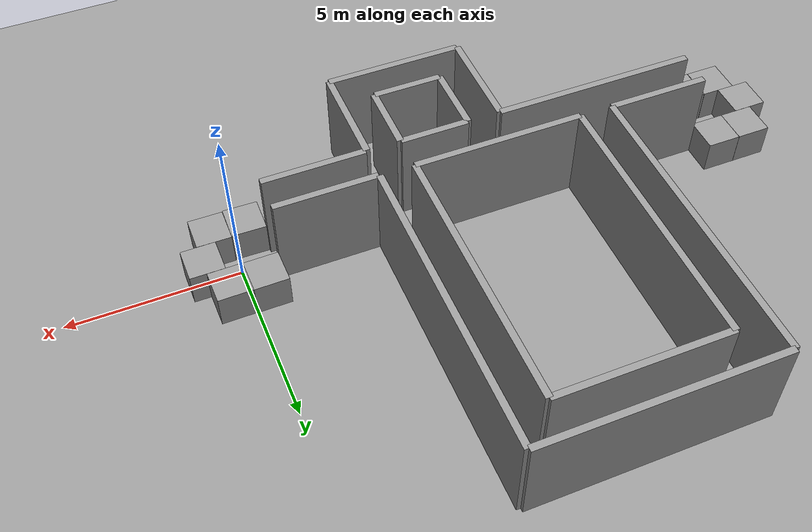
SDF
<sdf version="1.4">
 <world name="default">
  <light name="sun" type="directional">
   <pose>0 0 10 0 -0 0</pose>
   <diffuse>0.8 0.8 0.8 1</diffuse>
   <specular>0.2 0.2 0.2 1</specular>
   <attenuation>
    <range>1000</range>
    <constant>0.9</constant>
    <linear>0.01</linear>
    <quadratic>0.001</quadratic>
   </attenuation>
   <direction>0.5 0.1 -0.9</direction>
  </light>
  <scene><ambient>0.4 0.4 0.4 1</ambient><background>0.7 0.7 0.7 1</background><shadows>1</shadows></scene>
  <physics type="ode">
   <max_step_size>0.01</max_step_size>
   <real_time_factor>1</real_time_factor>
   <real_time_update_rate>100</real_time_update_rate>
   <gravity>0 0 -9.8</gravity>
  </physics>
  <model name="ground_plane_0">
   <static>1</static>
   <link name="link">
    <collision name="collision">
     <geometry><plane><normal>0 0 1</normal><size>100 100</size></plane></geometry>
     <surface><friction><ode><mu>100</mu><mu2>50</mu2></ode></friction></surface>
    </collision>
    <visual name="visual">
     <cast_shadows>0</cast_shadows>
     <geometry><plane><normal>0 0 1</normal><size>100 100</size></plane></geometry>
     <material>
      <script><uri>file://media/materials/scripts/gazebo.material</uri><name>Gazebo/Grey</name></script>
     </material>
    </visual>
    <velocity_decay><linear>0</linear><angular>0</angular></velocity_decay>
   </link>
   <pose>0.497681 0 0 0 -0 0</pose>
  </model>
  <spherical_coordinates>
   <surface_model>EARTH_WGS84</surface_model>
   <latitude_deg>0</latitude_deg>
   <longitude_deg>0</longitude_deg>
   <elevation>0</elevation>
   <heading_deg>0</heading_deg>
  </spherical_coordinates>
  <model name="grey_wall">
   <static>1</static>
   <link name="link">
    <pose>0 0 1.4 0 -0 0</pose>
    <collision name="collision"><geometry><box><size>3 0.2 2.8</size></box></geometry></collision>
    <visual name="visual">
     <cast_shadows>0</cast_shadows>
     <geometry><box><size>3 0.2 2.8</size></box></geometry>
     <material>
      <script>
       <uri>model://grey_wall/materials/scripts</uri>
       <uri>model://grey_wall/materials/textures</uri>
       <name>vrc/grey_wall</name>
      </script>
     </material>
    </visual>
    <velocity_decay><linear>0</linear><angular>0</angular></velocity_decay>
   </link>
   <pose>-2.47189 -0.502152 0 0 -0 0</pose>
  </model>
  <model name="grey_wall_0">
   <static>1</static>
   <link name="link">
    <pose>0 0 1.4 0 -0 0</pose>
    <collision name="collision"><geometry><box><size>3 0.2 2.8</size></box></geometry></collision>
    <visual name="visual">
     <cast_shadows>0</cast_shadows>
     <geometry><box><size>3 0.2 2.8</size></box></geometry>
     <material>
      <script>
       <uri>model://grey_wall/materials/scripts</uri>
       <uri>model://grey_wall/materials/textures</uri>
       <name>vrc/grey_wall</name>
      </script>
     </material>
    </visual>
    <velocity_decay><linear>0</linear><angular>0</angular></velocity_decay>
   </link>
   <pose>-2.47474 0.483977 0 0 -0 0</pose>
  </model>
  <model name="grey_wall_1">
   <static>1</static>
   <link name="link">
    <pose>0 0 1.4 0 -0 0</pose>
    <collision name="collision"><geometry><box><size>9 0.2 2.8</size></box></geometry></collision>
    <visual name="visual">
     <cast_shadows>0</cast_shadows>
     <geometry><box><size>9 0.2 2.8</size></box></geometry>
     <material>
      <script>
       <uri>model://grey_wall/materials/scripts</uri>
       <uri>model://grey_wall/materials/textures</uri>
       <name>vrc/grey_wall</name>
      </script>
     </material>
    </visual>
    <velocity_decay><linear>0</linear><angular>0</angular></velocity_decay>
   </link>
   <pose>-3.99343 5.00677 0 0 0 -1.57131</pose>
  </model>
  <model name="grey_wall_2">
   <static>1</static>
   <link name="link">
    <pose>0 0 1.4 0 -0 0</pose>
    <collision name="collision"><geometry><box><size>7 0.2 2.8</size></box></geometry></collision>
    <visual name="visual">
     <cast_shadows>0</cast_shadows>
     <geometry><box><size>7 0.2 2.8</size></box></geometry>
     <material>
      <script>
       <uri>model://grey_wall/materials/scripts</uri>
       <uri>model://grey_wall/materials/textures</uri>
       <name>vrc/grey_wall</name>
      </script>
     </material>
    </visual>
    <velocity_decay><linear>0</linear><angular>0</angular></velocity_decay>
   </link>
   <pose>-7.50665 9.51321 0 0 -0 0</pose>
  </model>
  <model name="grey_wall_3">
   <static>1</static>
   <link name="link">
    <pose>0 0 1.4 0 -0 0</pose>
    <collision name="collision"><geometry><box><size>9 0.2 2.8</size></box></geometry></collision>
    <visual name="visual">
     <cast_shadows>0</cast_shadows>
     <geometry><box><size>9 0.2 2.8</size></box></geometry>
     <material>
      <script>
       <uri>model://grey_wall/materials/scripts</uri>
       <uri>model://grey_wall/materials/textures</uri>
       <name>vrc/grey_wall</name>
      </script>
     </material>
    </visual>
    <velocity_decay><linear>0</linear><angular>0</angular></velocity_decay>
   </link>
   <pose>-11.001 4.99934 0 0 -0 1.57103</pose>
  </model>
  <model name="grey_wall_4">
   <static>1</static>
   <link name="link">
    <pose>0 0 1.4 0 -0 0</pose>
    <collision name="collision"><geometry><box><size>8 0.2 2.8</size></box></geometry></collision>
    <visual name="visual">
     <cast_shadows>0</cast_shadows>
     <geometry><box><size>8 0.2 2.8</size></box></geometry>
     <material>
      <script>
       <uri>model://grey_wall/materials/scripts</uri>
       <uri>model://grey_wall/materials/textures</uri>
       <name>vrc/grey_wall</name>
      </script>
     </material>
    </visual>
    <velocity_decay><linear>0</linear><angular>0</angular></velocity_decay>
   </link>
   <pose>-9.99812 4.5058 0 0 -0 1.5692</pose>
  </model>
  <model name="grey_wall_5">
   <static>1</static>
   <link name="link">
    <pose>0 0 1.4 0 -0 0</pose>
    <collision name="collision"><geometry><box><size>5 0.2 2.8</size></box></geometry></collision>
    <visual name="visual">
     <cast_shadows>0</cast_shadows>
     <geometry><box><size>5 0.2 2.8</size></box></geometry>
     <material>
      <script>
       <uri>model://grey_wall/materials/scripts</uri>
       <uri>model://grey_wall/materials/textures</uri>
       <name>vrc/grey_wall</name>
      </script>
     </material>
    </visual>
    <velocity_decay><linear>0</linear><angular>0</angular></velocity_decay>
   </link>
   <pose>-7.50658 0.502587 0 0 -0 0</pose>
  </model>
  <model name="grey_wall_6">
   <static>1</static>
   <link name="link">
    <pose>0 0 1.4 0 -0 0</pose>
    <collision name="collision"><geometry><box><size>8 0.2 2.8</size></box></geometry></collision>
    <visual name="visual">
     <cast_shadows>0</cast_shadows>
     <geometry><box><size>8 0.2 2.8</size></box></geometry>
     <material>
      <script>
       <uri>model://grey_wall/materials/scripts</uri>
       <uri>model://grey_wall/materials/textures</uri>
       <name>vrc/grey_wall</name>
      </script>
     </material>
    </visual>
    <velocity_decay><linear>0</linear><angular>0</angular></velocity_decay>
   </link>
   <pose>-5.01555 4.50008 0 0 -0 1.57199</pose>
  </model>
  <model name="grey_wall_7">
   <static>1</static>
   <link name="link">
    <pose>0 0 1.4 0 -0 0</pose>
    <collision name="collision"><geometry><box><size>5 0.2 2.8</size></box></geometry></collision>
    <visual name="visual">
     <cast_shadows>0</cast_shadows>
     <geometry><box><size>5 0.2 2.8</size></box></geometry>
     <material>
      <script>
       <uri>model://grey_wall/materials/scripts</uri>
       <uri>model://grey_wall/materials/textures</uri>
       <name>vrc/grey_wall</name>
      </script>
     </material>
    </visual>
    <velocity_decay><linear>0</linear><angular>0</angular></velocity_decay>
   </link>
   <pose>-7.51739 8.49316 0 0 -0 0</pose>
  </model>
  <model name="grey_wall_8">
   <static>1</static>
   <link name="link">
    <pose>0 0 1.4 0 -0 0</pose>
    <collision name="collision"><geometry><box><size>3 0.2 2.8</size></box></geometry></collision>
    <visual name="visual">
     <cast_shadows>0</cast_shadows>
     <geometry><box><size>3 0.2 2.8</size></box></geometry>
     <material>
      <script>
       <uri>model://grey_wall/materials/scripts</uri>
       <uri>model://grey_wall/materials/textures</uri>
       <name>vrc/grey_wall</name>
      </script>
     </material>
    </visual>
    <velocity_decay><linear>0</linear><angular>0</angular></velocity_decay>
   </link>
   <pose>-12.4932 0.505389 0 0 -0 0</pose>
  </model>
  <model name="grey_wall_9">
   <static>1</static>
   <link name="link">
    <pose>0 0 1.4 0 -0 0</pose>
    <collision name="collision"><geometry><box><size>6 0.2 2.8</size></box></geometry></collision>
    <visual name="visual">
     <cast_shadows>0</cast_shadows>
     <geometry><box><size>6 0.2 2.8</size></box></geometry>
     <material>
      <script>
       <uri>model://grey_wall/materials/scripts</uri>
       <uri>model://grey_wall/materials/textures</uri>
       <name>vrc/grey_wall</name>
      </script>
     </material>
    </visual>
    <velocity_decay><linear>0</linear><angular>0</angular></velocity_decay>
   </link>
   <pose>-11.0085 -0.499552 0 0 -0 0</pose>
  </model>
  <model name="grey_wall_10">
   <static>1</static>
   <link name="link">
    <pose>0 0 1.4 0 -0 0</pose>
    <collision name="collision"><geometry><box><size>3 0.2 2.8</size></box></geometry></collision>
    <visual name="visual">
     <cast_shadows>0</cast_shadows>
     <geometry><box><size>3 0.2 2.8</size></box></geometry>
     <material>
      <script>
       <uri>model://grey_wall/materials/scripts</uri>
       <uri>model://grey_wall/materials/textures</uri>
       <name>vrc/grey_wall</name>
      </script>
     </material>
    </visual>
    <velocity_decay><linear>0</linear><angular>0</angular></velocity_decay>
   </link>
   <pose>-8.00452 -2.0023 0 0 -0 1.57004</pose>
  </model>
  <model name="grey_wall_11">
   <static>1</static>
   <link name="link">
    <pose>0 0 1.4 0 -0 0</pose>
    <collision name="collision"><geometry><box><size>4 0.2 2.8</size></box></geometry></collision>
    <visual name="visual">
     <cast_shadows>0</cast_shadows>
     <geometry><box><size>4 0.2 2.8</size></box></geometry>
     <material>
      <script>
       <uri>model://grey_wall/materials/scripts</uri>
       <uri>model://grey_wall/materials/textures</uri>
       <name>vrc/grey_wall</name>
      </script>
     </material>
    </visual>
    <velocity_decay><linear>0</linear><angular>0</angular></velocity_decay>
   </link>
   <pose>-5.99007 -3.50721 0 0 -0 0</pose>
  </model>
  <model name="grey_wall_12">
   <static>1</static>
   <link name="link">
    <pose>0 0 1.4 0 -0 0</pose>
    <collision name="collision"><geometry><box><size>3 0.2 2.8</size></box></geometry></collision>
    <visual name="visual">
     <cast_shadows>0</cast_shadows>
     <geometry><box><size>3 0.2 2.8</size></box></geometry>
     <material>
      <script>
       <uri>model://grey_wall/materials/scripts</uri>
       <uri>model://grey_wall/materials/textures</uri>
       <name>vrc/grey_wall</name>
      </script>
     </material>
    </visual>
    <velocity_decay><linear>0</linear><angular>0</angular></velocity_decay>
   </link>
   <pose>-4.00303 -2.00885 0 0 -0 1.57383</pose>
  </model>
  <model name="grey_wall_13">
   <static>1</static>
   <link name="link">
    <pose>0 0 1.4 0 -0 0</pose>
    <collision name="collision"><geometry><box><size>2 0.2 2.8</size></box></geometry></collision>
    <visual name="visual">
     <cast_shadows>0</cast_shadows>
     <geometry><box><size>2 0.2 2.8</size></box></geometry>
     <material>
      <script>
       <uri>model://grey_wall/materials/scripts</uri>
       <uri>model://grey_wall/materials/textures</uri>
       <name>vrc/grey_wall</name>
      </script>
     </material>
    </visual>
    <velocity_decay><linear>0</linear><angular>0</angular></velocity_decay>
   </link>
   <pose>-4.99004 -1.50294 0 0 -0 1.57147</pose>
  </model>
  <model name="grey_wall_14">
   <static>1</static>
   <link name="link">
    <pose>0 0 1.4 0 -0 0</pose>
    <collision name="collision"><geometry><box><size>2 0.2 2.8</size></box></geometry></collision>
    <visual name="visual">
     <cast_shadows>0</cast_shadows>
     <geometry><box><size>2 0.2 2.8</size></box></geometry>
     <material>
      <script>
       <uri>model://grey_wall/materials/scripts</uri>
       <uri>model://grey_wall/materials/textures</uri>
       <name>vrc/grey_wall</name>
      </script>
     </material>
    </visual>
    <velocity_decay><linear>0</linear><angular>0</angular></velocity_decay>
   </link>
   <pose>-6.00924 -2.49923 0 0 -0 0</pose>
  </model>
  <model name="grey_wall_15">
   <static>1</static>
   <link name="link">
    <pose>0 0 1.4 0 -0 0</pose>
    <collision name="collision"><geometry><box><size>2 0.2 2.8</size></box></geometry></collision>
    <visual name="visual">
     <cast_shadows>0</cast_shadows>
     <geometry><box><size>2 0.2 2.8</size></box></geometry>
     <material>
      <script>
       <uri>model://grey_wall/materials/scripts</uri>
       <uri>model://grey_wall/materials/textures</uri>
       <name>vrc/grey_wall</name>
      </script>
     </material>
    </visual>
    <velocity_decay><linear>0</linear><angular>0</angular></velocity_decay>
   </link>
   <pose>-7.01196 -1.49374 0 0 -0 1.57425</pose>
  </model>
  <model name="grey_wall_16">
   <static>1</static>
   <link name="link">
    <pose>0 0 1.4 0 -0 0</pose>
    <collision name="collision"><geometry><box><size>2 0.2 2.8</size></box></geometry></collision>
    <visual name="visual">
     <cast_shadows>0</cast_shadows>
     <geometry><box><size>2 0.2 2.8</size></box></geometry>
     <material>
      <script>
       <uri>model://grey_wall/materials/scripts</uri>
       <uri>model://grey_wall/materials/textures</uri>
       <name>vrc/grey_wall</name>
      </script>
     </material>
    </visual>
    <velocity_decay><linear>0</linear><angular>0</angular></velocity_decay>
   </link>
   <pose>-6.00191 -0.497309 0 0 -0 0</pose>
  </model>
  <model name="unit_box_6">
   <pose>-14.5101 -1 0.5 0 -0 0</pose>
   <link name="link">
    <inertial>
     <mass>1</mass>
     <inertia><ixx>1</ixx><ixy>0</ixy><ixz>0</ixz><iyy>1</iyy><iyz>0</iyz><izz>1</izz></inertia>
    </inertial>
    <collision name="collision"><geometry><box><size>1 1 1</size></box></geometry></collision>
    <visual name="visual">
     <geometry><box><size>1 1 1</size></box></geometry>
     <material>
      <script><uri>file://media/materials/scripts/gazebo.material</uri><name>Gazebo/Grey</name></script>
     </material>
    </visual>
    <velocity_decay><linear>0</linear><angular>0</angular></velocity_decay>
   </link>
   <static>0</static>
  </model>
  <model name="unit_box_7">
   <pose>-14.4918 1.00177 0.5 0 -0 -0.003541</pose>
   <link name="link">
    <inertial>
     <mass>1</mass>
     <inertia><ixx>1</ixx><ixy>0</ixy><ixz>0</ixz><iyy>1</iyy><iyz>0</iyz><izz>1</izz></inertia>
    </inertial>
    <collision name="collision"><geometry><box><size>1 1 1</size></box></geometry></collision>
    <visual name="visual">
     <geometry><box><size>1 1 1</size></box></geometry>
     <material>
      <script><uri>file://media/materials/scripts/gazebo.material</uri><name>Gazebo/Grey</name></script>
     </material>
    </visual>
    <velocity_decay><linear>0</linear><angular>0</angular></velocity_decay>
   </link>
   <static>0</static>
  </model>
  <model name="unit_box_8">
   <pose>-16 0 0.5 0 -0 0</pose>
   <link name="link">
    <inertial>
     <mass>1</mass>
     <inertia><ixx>1</ixx><ixy>0</ixy><ixz>0</ixz><iyy>1</iyy><iyz>0</iyz><izz>1</izz></inertia>
    </inertial>
    <collision name="collision"><geometry><box><size>1 1 1</size></box></geometry></collision>
    <visual name="visual">
     <geometry><box><size>1 1 1</size></box></geometry>
     <material>
      <script><uri>file://media/materials/scripts/gazebo.material</uri><name>Gazebo/Grey</name></script>
     </material>
    </visual>
    <velocity_decay><linear>0</linear><angular>0</angular></velocity_decay>
   </link>
   <static>0</static>
  </model>
  <model name="unit_box_9">
   <pose>-15.5197 -1 0.5 0 -0 0</pose>
   <link name="link">
    <inertial>
     <mass>1</mass>
     <inertia><ixx>1</ixx><ixy>0</ixy><ixz>0</ixz><iyy>1</iyy><iyz>0</iyz><izz>1</izz></inertia>
    </inertial>
    <collision name="collision"><geometry><box><size>1 1 1</size></box></geometry></collision>
    <visual name="visual">
     <geometry><box><size>1 1 1</size></box></geometry>
     <material>
      <script><uri>file://media/materials/scripts/gazebo.material</uri><name>Gazebo/Grey</name></script>
     </material>
    </visual>
    <velocity_decay><linear>0</linear><angular>0</angular></velocity_decay>
   </link>
   <static>0</static>
  </model>
  <model name="unit_box_10">
   <pose>-15.4937 1.00336 0.5 0 0 -0.000272</pose>
   <link name="link">
    <inertial>
     <mass>1</mass>
     <inertia><ixx>1</ixx><ixy>0</ixy><ixz>0</ixz><iyy>1</iyy><iyz>0</iyz><izz>1</izz></inertia>
    </inertial>
    <collision name="collision"><geometry><box><size>1 1 1</size></box></geometry></collision>
    <visual name="visual">
     <geometry><box><size>1 1 1</size></box></geometry>
     <material>
      <script><uri>file://media/materials/scripts/gazebo.material</uri><name>Gazebo/Grey</name></script>
     </material>
    </visual>
    <velocity_decay><linear>0</linear><angular>0</angular></velocity_decay>
   </link>
   <static>0</static>
  </model>
  <model name="unit_box_1_0">
   <pose>-0.480928 -1.01206 0.499996 -6.61744e-24 1e-06 -0.022323</pose>
   <link name="link">
    <inertial>
     <mass>1</mass>
     <inertia><ixx>1</ixx><ixy>0</ixy><ixz>0</ixz><iyy>1</iyy><iyz>0</iyz><izz>1</izz></inertia>
    </inertial>
    <collision name="collision"><geometry><box><size>1 1 1</size></box></geometry></collision>
    <visual name="visual">
     <geometry><box><size>1 1 1</size></box></geometry>
     <material>
      <script><uri>file://media/materials/scripts/gazebo.material</uri><name>Gazebo/Grey</name></script>
     </material>
    </visual>
    <velocity_decay><linear>0</linear><angular>0</angular></velocity_decay>
   </link>
   <static>0</static>
  </model>
  <model name="unit_box_2_0">
   <pose>-0.478022 1.00685 0.5 0 -0 0.00791</pose>
   <link name="link">
    <inertial>
     <mass>1</mass>
     <inertia><ixx>1</ixx><ixy>0</ixy><ixz>0</ixz><iyy>1</iyy><iyz>0</iyz><izz>1</izz></inertia>
    </inertial>
    <collision name="collision"><geometry><box><size>1 1 1</size></box></geometry></collision>
    <visual name="visual">
     <geometry><box><size>1 1 1</size></box></geometry>
     <material>
      <script><uri>file://media/materials/scripts/gazebo.material</uri><name>Gazebo/Grey</name></script>
     </material>
    </visual>
    <velocity_decay><linear>0</linear><angular>0</angular></velocity_decay>
   </link>
   <static>0</static>
  </model>
  <model name="unit_box_3_0">
   <pose>0.524276 -0.998726 0.5 0 -0 -0.012381</pose>
   <link name="link">
    <inertial>
     <mass>1</mass>
     <inertia><ixx>1</ixx><ixy>0</ixy><ixz>0</ixz><iyy>1</iyy><iyz>0</iyz><izz>1</izz></inertia>
    </inertial>
    <collision name="collision"><geometry><box><size>1 1 1</size></box></geometry></collision>
    <visual name="visual">
     <geometry><box><size>1 1 1</size></box></geometry>
     <material>
      <script><uri>file://media/materials/scripts/gazebo.material</uri><name>Gazebo/Grey</name></script>
     </material>
    </visual>
    <velocity_decay><linear>0</linear><angular>0</angular></velocity_decay>
   </link>
   <static>0</static>
  </model>
  <model name="unit_box_4_0">
   <pose>0.522044 1.00256 0.5 0 -0 0.00791</pose>
   <link name="link">
    <inertial>
     <mass>1</mass>
     <inertia><ixx>1</ixx><ixy>0</ixy><ixz>0</ixz><iyy>1</iyy><iyz>0</iyz><izz>1</izz></inertia>
    </inertial>
    <collision name="collision"><geometry><box><size>1 1 1</size></box></geometry></collision>
    <visual name="visual">
     <geometry><box><size>1 1 1</size></box></geometry>
     <material>
      <script><uri>file://media/materials/scripts/gazebo.material</uri><name>Gazebo/Grey</name></script>
     </material>
    </visual>
    <velocity_decay><linear>0</linear><angular>0</angular></velocity_decay>
   </link>
   <static>0</static>
  </model>
  <model name="unit_box_5_0">
   <pose>1.00036 0.001265 0.5 0 0 -0.000699</pose>
   <link name="link">
    <inertial>
     <mass>1</mass>
     <inertia><ixx>1</ixx><ixy>0</ixy><ixz>0</ixz><iyy>1</iyy><iyz>0</iyz><izz>1</izz></inertia>
    </inertial>
    <collision name="collision"><geometry><box><size>1 1 1</size></box></geometry></collision>
    <visual name="visual">
     <geometry><box><size>1 1 1</size></box></geometry>
     <material>
      <script><uri>file://media/materials/scripts/gazebo.material</uri><name>Gazebo/Grey</name></script>
     </material>
    </visual>
    <velocity_decay><linear>0</linear><angular>0</angular></velocity_decay>
   </link>
   <static>0</static>
  </model>
 </world>
</sdf>
